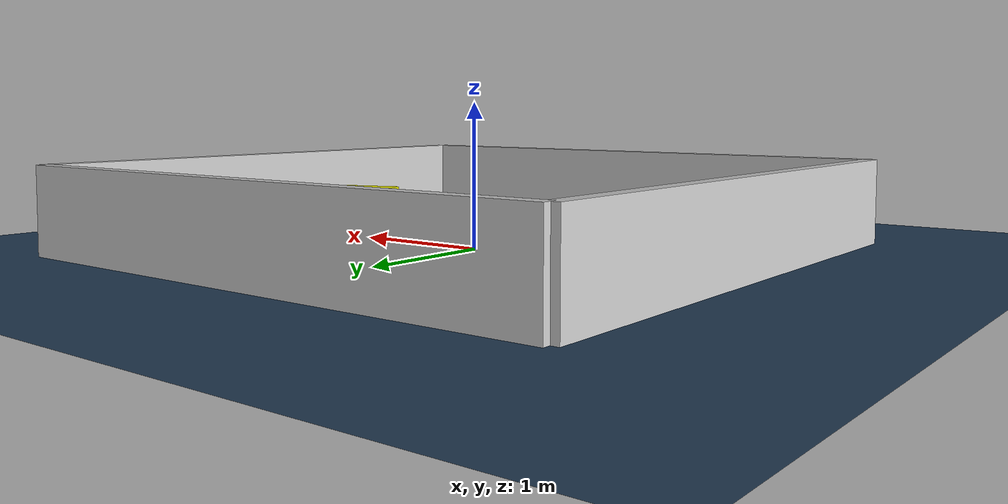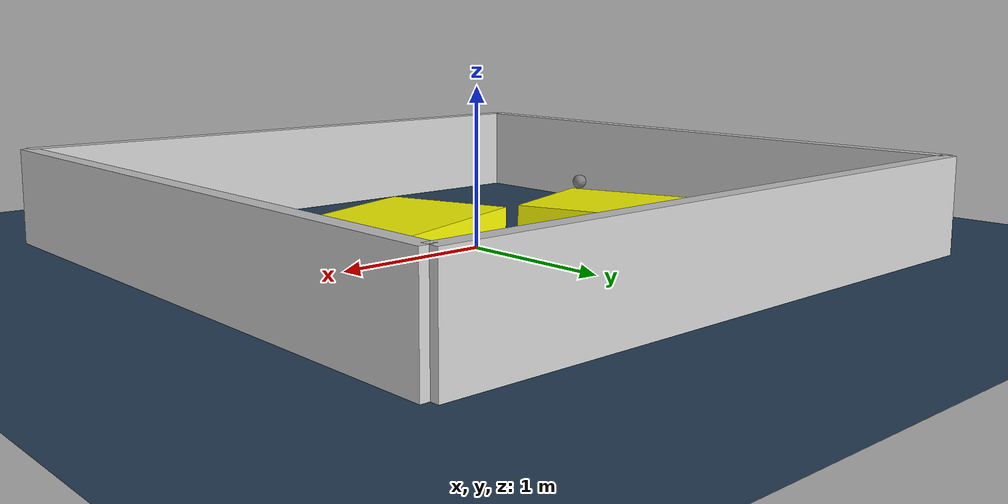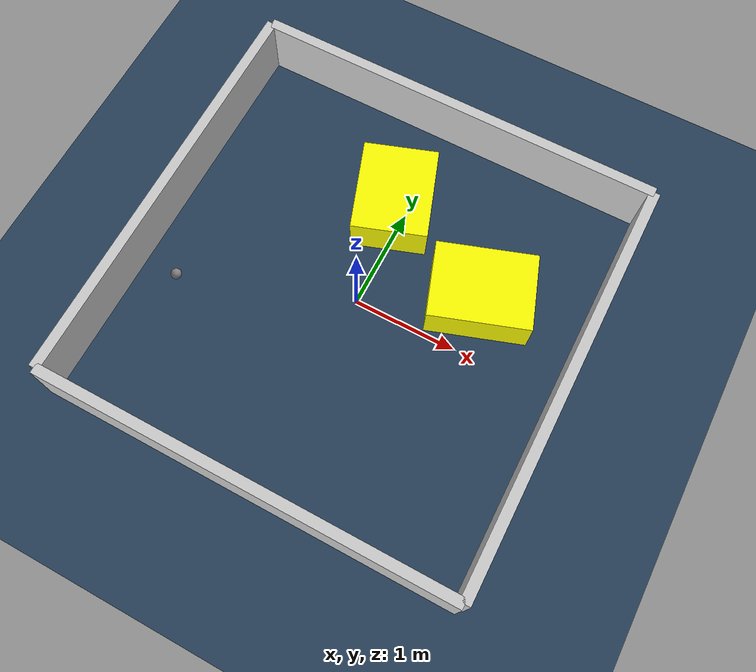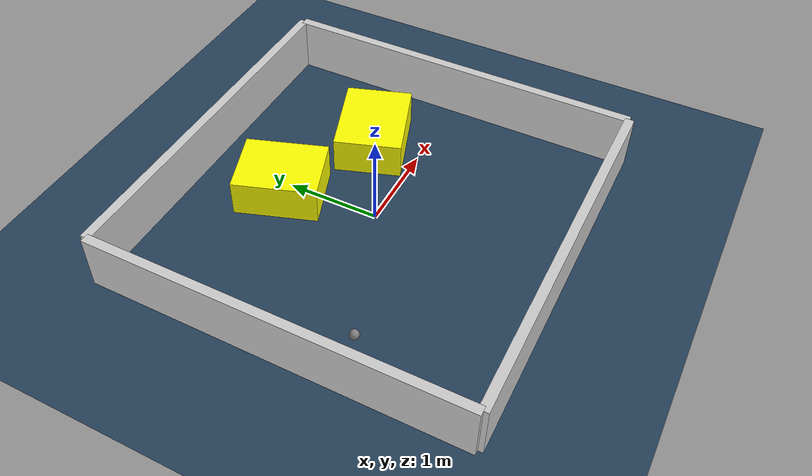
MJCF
<?xml version="1.0" ?>
<mujoco model="generated_environment">
  <option timestep="0.01" integrator="RK4" cone="elliptic"/>
  <default>
    <geom density="1"/>
  </default>
  <asset>
    <texture builtin="gradient" height="3072" rgb1="0.3 0.5 0.7" rgb2="0 0 0" type="skybox" width="512"/>
    <texture builtin="checker" height="300" mark="edge" markrgb="0.8 0.8 0.8" name="groundplane" rgb1="0.2 0.3 0.4" rgb2="0.1 0.2 0.3" type="2d" width="300"/>
    <material name="groundplane" reflectance="0.2" texrepeat="5 5" texture="groundplane" texuniform="true"/>
    <material name="robot" rgba="0.0 1.0 0.0 1"/>
  </asset>
  <worldbody>
    <light dir="0 0 -1" directional="true" pos="0 0 1.5"/>
    <geom condim="4" friction="1.0 0.005 0.001" material="groundplane" name="floor" size="0 0 0.05" type="plane"/>
    <body name="walls">
      <geom name="wall_1" condim="4" pos="-2.0 0.0 0.3" rgba="0.800000011920929 0.800000011920929 0.800000011920929 1.0" size="0.05 2.0 0.3" type="box"/>
      <geom name="wall_2" condim="4" pos="2.0 0.0 0.3" rgba="0.800000011920929 0.800000011920929 0.800000011920929 1.0" size="0.05 2.0 0.3" type="box"/>
      <geom name="wall_3" condim="4" pos="0.0 -2.0 0.3" rgba="0.800000011920929 0.800000011920929 0.800000011920929 1.0" size="2.0 0.05 0.3" type="box"/>
      <geom name="wall_4" condim="4" pos="0.0 2.0 0.3" rgba="0.800000011920929 0.800000011920929 0.800000011920929 1.0" size="2.0 0.05 0.3" type="box"/>
    </body>
    <body name="robot">
      <joint name="joint_x" type="slide" pos="0 0 0" axis="1 0 0"/>
      <joint name="joint_y" type="slide" pos="0 0 0" axis="0 1 0"/>
      <geom name="robot" type="sphere" pos="-1.5562769284333295 -0.6011672755745077 0.2" size="0.05" mass="5." friction="1.0 0.005 0.0001" condim="4"/>
      <site name="sensor_ball"/>
    </body>
    <body name="obstacle_1_movable">
      <geom name="obstacle_1_movable" condim="4" pos="0.9983908915795188 0.5387293345338433 0.2" euler="0 0 198.99102978736508" friction="1.0 0.005 0.001" rgba="1 1 0 1" size="0.47203673659795214 0.3640767412139104 0.2" type="box" mass="0.1"/>
      <joint type="free"/>
    </body>
    <body name="obstacle_2_movable">
      <geom name="obstacle_2_movable" condim="4" pos="-0.13986763768822041 1.0341141675434793 0.2" euler="0 0 109.21898856590249" friction="1.0 0.005 0.001" rgba="1 1 0 1" size="0.4468310052355206 0.35809812148001463 0.2" type="box" mass="0.1"/>
      <joint type="free"/>
    </body>
  </worldbody>
  <actuator>
    <motor name="actuator_x" joint="joint_x" gear="1" ctrlrange="-1 1"/>
    <motor name="actuator_y" joint="joint_y" gear="1" ctrlrange="-1 1"/>
  </actuator>
</mujoco>
